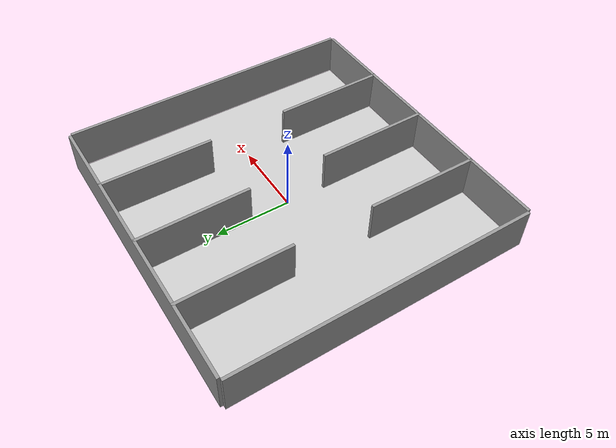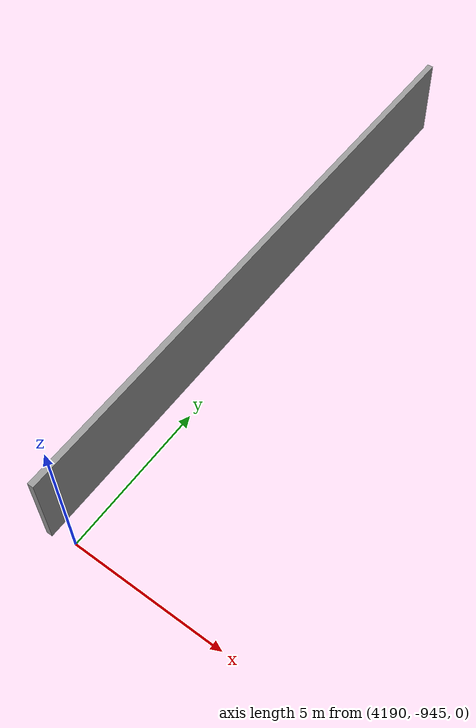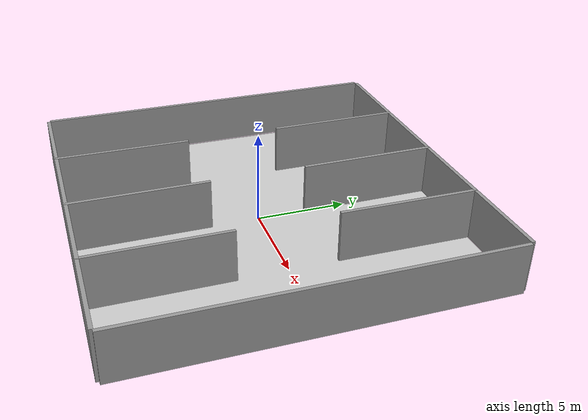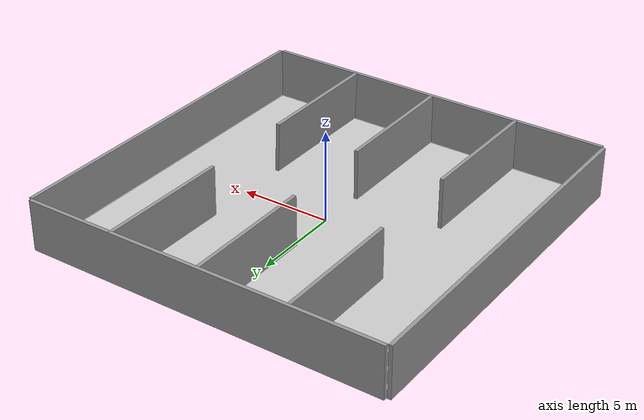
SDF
<sdf version="1.6">
 <world name="default">
  <light name="sun" type="directional">
   <pose>0 0 10 0 -0 0</pose>
   <diffuse>0.8 0.8 0.8 1</diffuse>
   <specular>0.1 0.1 0.1 1</specular>
   <attenuation>
    <range>1000</range>
    <constant>0.9</constant>
    <linear>0.01</linear>
    <quadratic>0.001</quadratic>
   </attenuation>
   <direction>-0.5 0.5 -1</direction>
  </light>
  <model name="colorselectingplane">
   <static>1</static>
   <link name="link">
    <collision name="collision">
     <geometry><plane><normal>0 0 1</normal><size>20 20</size></plane></geometry>
     <surface><friction><ode><mu>100</mu><mu2>50</mu2></ode></friction></surface>
    </collision>
    <visual name="visual">
     <cast_shadows>0</cast_shadows>
     <geometry><plane><normal>0 0 1</normal><size>20 20</size></plane></geometry>
     <material>
      <script>
       <uri>model://colorselectingplane/materials/scripts</uri>
       <uri>model://colorselectingplane/materials/textures</uri>
       <name>ColorSelectingPlane/Image</name>
      </script>
     </material>
    </visual>
   </link>
  </model>
  <gravity>0 0 -9.8</gravity>
  <magnetic_field>6e-06 2.3e-05 -4.2e-05</magnetic_field>
  <atmosphere type="adiabatic"/>
  <physics name="default_physics" default="0" type="ode">
   <max_step_size>0.001</max_step_size>
   <real_time_factor>1</real_time_factor>
   <real_time_update_rate>1000</real_time_update_rate>
  </physics>
  <scene><ambient>0.4 0.4 0.4 1</ambient><background>0.7 0.7 0.7 1</background><shadows>1</shadows></scene>
  <spherical_coordinates>
   <surface_model>EARTH_WGS84</surface_model>
   <latitude_deg>0</latitude_deg>
   <longitude_deg>0</longitude_deg>
   <elevation>0</elevation>
   <heading_deg>0</heading_deg>
  </spherical_coordinates>
  <model name="grey_wall">
   <static>1</static>
   <link name="link">
    <pose>0 0 1.4 0 -0 0</pose>
    <collision name="collision"><geometry><box><size>20 0.2 2.8</size></box></geometry></collision>
    <visual name="visual">
     <cast_shadows>0</cast_shadows>
     <geometry><box><size>20 0.2 2.8</size></box></geometry>
     <material>
      <script>
       <uri>model://grey_wall/materials/scripts</uri>
       <uri>model://grey_wall/materials/textures</uri>
       <name>vrc/grey_wall</name>
      </script>
     </material>
    </visual>
   </link>
   <pose>0.025347 10.0867 0 0 -0 0</pose>
  </model>
  <model name="grey_wall_0">
   <static>1</static>
   <link name="link">
    <pose>0 0 1.4 0 -0 0</pose>
    <collision name="collision"><geometry><box><size>20 0.2 2.8</size></box></geometry></collision>
    <visual name="visual">
     <cast_shadows>0</cast_shadows>
     <geometry><box><size>20 0.2 2.8</size></box></geometry>
     <material>
      <script>
       <uri>model://grey_wall/materials/scripts</uri>
       <uri>model://grey_wall/materials/textures</uri>
       <name>vrc/grey_wall</name>
      </script>
     </material>
    </visual>
   </link>
   <pose>-10.1105 0.005819 2e-06 -0.001714 0.000515 -1.57005</pose>
  </model>
  <model name="grey_wall_1">
   <static>1</static>
   <link name="link">
    <pose>0 0 1.4 0 -0 0</pose>
    <collision name="collision"><geometry><box><size>20 0.2 2.8</size></box></geometry></collision>
    <visual name="visual">
     <cast_shadows>0</cast_shadows>
     <geometry><box><size>20 0.2 2.8</size></box></geometry>
     <material>
      <script>
       <uri>model://grey_wall/materials/scripts</uri>
       <uri>model://grey_wall/materials/textures</uri>
       <name>vrc/grey_wall</name>
      </script>
     </material>
    </visual>
   </link>
   <pose>-0.006836 -10.09 0 0 -0 0</pose>
  </model>
  <model name="grey_wall_2">
   <static>1</static>
   <link name="link">
    <pose>0 0 1.4 0 -0 0</pose>
    <collision name="collision"><geometry><box><size>20 0.2 2.8</size></box></geometry></collision>
    <visual name="visual">
     <cast_shadows>0</cast_shadows>
     <geometry><box><size>20 0.2 2.8</size></box></geometry>
     <material>
      <script>
       <uri>model://grey_wall/materials/scripts</uri>
       <uri>model://grey_wall/materials/textures</uri>
       <name>vrc/grey_wall</name>
      </script>
     </material>
    </visual>
   </link>
   <pose>4189.2 -935.216 -5e-06 -0.014737 0.004309 1.57401</pose>
  </model>
  <model name="grey_wall_4">
   <static>1</static>
   <link name="link">
    <pose>0 0 1.4 0 -0 0</pose>
    <collision name="collision"><geometry><box><size>7.5 0.2 2.8</size></box></geometry></collision>
    <visual name="visual">
     <cast_shadows>0</cast_shadows>
     <geometry><box><size>7.5 0.2 2.8</size></box></geometry>
     <material>
      <script>
       <uri>model://grey_wall/materials/scripts</uri>
       <uri>model://grey_wall/materials/textures</uri>
       <name>vrc/grey_wall</name>
      </script>
     </material>
    </visual>
   </link>
   <pose>0.00658 -6.37731 0 0 -0 1.57585</pose>
  </model>
  <model name="grey_wall_5">
   <static>1</static>
   <link name="link">
    <pose>0 0 1.4 0 -0 0</pose>
    <collision name="collision"><geometry><box><size>7.5 0.2 2.8</size></box></geometry></collision>
    <visual name="visual">
     <cast_shadows>0</cast_shadows>
     <geometry><box><size>7.5 0.2 2.8</size></box></geometry>
     <material>
      <script>
       <uri>model://grey_wall/materials/scripts</uri>
       <uri>model://grey_wall/materials/textures</uri>
       <name>vrc/grey_wall</name>
      </script>
     </material>
    </visual>
   </link>
   <pose>5.02525 -6.42285 0 -0.043287 -0 1.57431</pose>
  </model>
  <model name="grey_wall_6">
   <static>1</static>
   <link name="link">
    <pose>0 0 1.4 0 -0 0</pose>
    <collision name="collision"><geometry><box><size>7.5 0.2 2.8</size></box></geometry></collision>
    <visual name="visual">
     <cast_shadows>0</cast_shadows>
     <geometry><box><size>7.5 0.2 2.8</size></box></geometry>
     <material>
      <script>
       <uri>model://grey_wall/materials/scripts</uri>
       <uri>model://grey_wall/materials/textures</uri>
       <name>vrc/grey_wall</name>
      </script>
     </material>
    </visual>
   </link>
   <pose>-5.02221 6.43468 0 0 -0 1.57441</pose>
  </model>
  <model name="grey_wall_7">
   <static>1</static>
   <link name="link">
    <pose>0 0 1.4 0 -0 0</pose>
    <collision name="collision"><geometry><box><size>7.5 0.2 2.8</size></box></geometry></collision>
    <visual name="visual">
     <cast_shadows>0</cast_shadows>
     <geometry><box><size>7.5 0.2 2.8</size></box></geometry>
     <material>
      <script>
       <uri>model://grey_wall/materials/scripts</uri>
       <uri>model://grey_wall/materials/textures</uri>
       <name>vrc/grey_wall</name>
      </script>
     </material>
    </visual>
   </link>
   <pose>-0.054044 6.40454 0 0 -0 1.57829</pose>
  </model>
  <model name="grey_wall_8">
   <static>1</static>
   <link name="link">
    <pose>0 0 1.4 0 -0 0</pose>
    <collision name="collision"><geometry><box><size>7.5 0.2 2.8</size></box></geometry></collision>
    <visual name="visual">
     <cast_shadows>0</cast_shadows>
     <geometry><box><size>7.5 0.2 2.8</size></box></geometry>
     <material>
      <script>
       <uri>model://grey_wall/materials/scripts</uri>
       <uri>model://grey_wall/materials/textures</uri>
       <name>vrc/grey_wall</name>
      </script>
     </material>
    </visual>
   </link>
   <pose>5.00764 6.40311 0 -0.019935 -0 1.56257</pose>
  </model>
  <model name="grey_wall_9">
   <static>1</static>
   <link name="link">
    <pose>0 0 1.4 0 -0 0</pose>
    <collision name="collision"><geometry><box><size>7.5 0.2 2.8</size></box></geometry></collision>
    <visual name="visual">
     <cast_shadows>0</cast_shadows>
     <geometry><box><size>7.5 0.2 2.8</size></box></geometry>
     <material>
      <script>
       <uri>model://grey_wall/materials/scripts</uri>
       <uri>model://grey_wall/materials/textures</uri>
       <name>vrc/grey_wall</name>
      </script>
     </material>
    </visual>
   </link>
   <pose>-5.02133 -6.3913 0 0 -0 1.56295</pose>
  </model>
  <model name="grey_wall_10">
   <static>1</static>
   <link name="link">
    <pose>0 0 1.4 0 -0 0</pose>
    <collision name="collision"><geometry><box><size>20 0.2 2.8</size></box></geometry></collision>
    <visual name="visual">
     <cast_shadows>0</cast_shadows>
     <geometry><box><size>20 0.2 2.8</size></box></geometry>
     <material>
      <script>
       <uri>model://grey_wall/materials/scripts</uri>
       <uri>model://grey_wall/materials/textures</uri>
       <name>vrc/grey_wall</name>
      </script>
     </material>
    </visual>
   </link>
   <pose>10.1003 -0.028997 0 0 -0 1.57034</pose>
  </model>
 </world>
</sdf>
